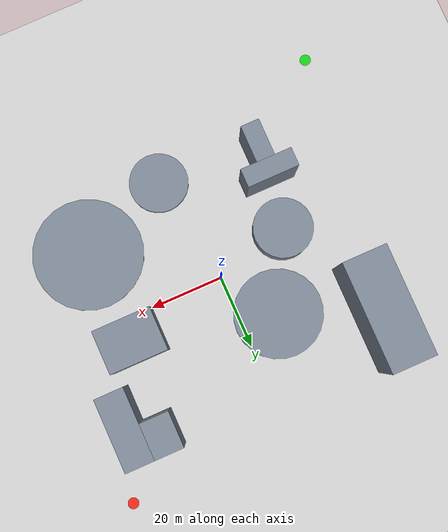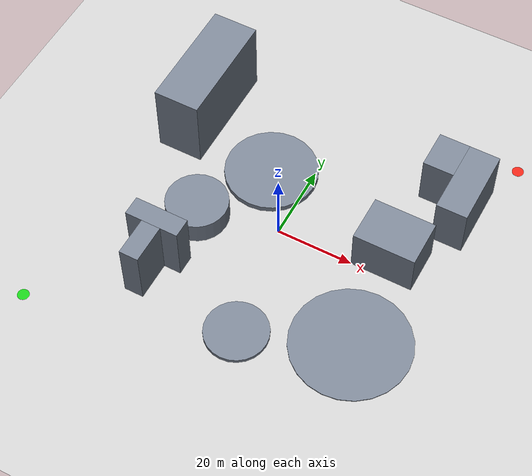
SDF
<?xml version="1.0"?>
<sdf version="1.6"><world name="logistics_4_urban_park_emergency">
  <physics name="default_physics" type="ode"><max_step_size>0.004</max_step_size><real_time_factor>1</real_time_factor><real_time_update_rate>250</real_time_update_rate><magnetic_field>6.0e-6 2.3e-5 -4.2e-5</magnetic_field></physics>
  <gravity>0 0 -9.8066</gravity>
  <include><uri>model://sun</uri></include>
  <include><uri>model://ground_plane</uri></include>
  <spherical_coordinates><surface_model>EARTH_WGS84</surface_model><latitude_deg>47.397742</latitude_deg><longitude_deg>8.545594</longitude_deg><elevation>488</elevation><heading_deg>0</heading_deg></spherical_coordinates>
<model name="obstacle_00_library_part_0"><static>true</static><pose>-22.000 -27.000 8.000 0 0 0</pose><link name="link"><collision name="collision"><geometry><box><size>5.000 10.000 16.000</size></box></geometry></collision><visual name="visual"><geometry><box><size>5.000 10.000 16.000</size></box></geometry><material><ambient>0.48 0.52 0.58 1</ambient><diffuse>0.48 0.52 0.58 1</diffuse></material></visual></link></model>
<model name="obstacle_00_library_part_1"><static>true</static><pose>-22.000 -19.500 8.000 0 0 0</pose><link name="link"><collision name="collision"><geometry><box><size>14.000 5.000 16.000</size></box></geometry></collision><visual name="visual"><geometry><box><size>14.000 5.000 16.000</size></box></geometry><material><ambient>0.48 0.52 0.58 1</ambient><diffuse>0.48 0.52 0.58 1</diffuse></material></visual></link></model>
<model name="obstacle_01_gallery_part_0"><static>true</static><pose>38.000 26.000 7.000 0 0 0</pose><link name="link"><collision name="collision"><geometry><box><size>8.000 20.000 14.000</size></box></geometry></collision><visual name="visual"><geometry><box><size>8.000 20.000 14.000</size></box></geometry><material><ambient>0.48 0.52 0.58 1</ambient><diffuse>0.48 0.52 0.58 1</diffuse></material></visual></link></model>
<model name="obstacle_01_gallery_part_1"><static>true</static><pose>30.000 31.000 7.000 0 0 0</pose><link name="link"><collision name="collision"><geometry><box><size>8.000 10.000 14.000</size></box></geometry></collision><visual name="visual"><geometry><box><size>8.000 10.000 14.000</size></box></geometry><material><ambient>0.48 0.52 0.58 1</ambient><diffuse>0.48 0.52 0.58 1</diffuse></material></visual></link></model>
<model name="obstacle_02_flower_bed"><static>true</static><pose>5.000 -30.000 0.500 0 0 0</pose><link name="link"><collision name="collision"><geometry><cylinder><radius>8.000</radius><length>1.000</length></cylinder></geometry></collision><visual name="visual"><geometry><cylinder><radius>8.000</radius><length>1.000</length></cylinder></geometry><material><ambient>0.48 0.52 0.58 1</ambient><diffuse>0.48 0.52 0.58 1</diffuse></material></visual></link></model>
<model name="obstacle_03_fountain"><static>true</static><pose>-10.000 15.000 0.750 0 0 0</pose><link name="link"><collision name="collision"><geometry><cylinder><radius>12.000</radius><length>1.500</length></cylinder></geometry></collision><visual name="visual"><geometry><cylinder><radius>12.000</radius><length>1.500</length></cylinder></geometry><material><ambient>0.48 0.52 0.58 1</ambient><diffuse>0.48 0.52 0.58 1</diffuse></material></visual></link></model>
<model name="obstacle_04_exhibition_hall"><static>true</static><pose>28.000 6.000 6.000 0 0 0</pose><link name="link"><collision name="collision"><geometry><box><size>16.000 12.000 12.000</size></box></geometry></collision><visual name="visual"><geometry><box><size>16.000 12.000 12.000</size></box></geometry><material><ambient>0.48 0.52 0.58 1</ambient><diffuse>0.48 0.52 0.58 1</diffuse></material></visual></link></model>
<model name="obstacle_05_sculpture"><static>true</static><pose>-20.000 -5.000 3.000 0 0 0</pose><link name="link"><collision name="collision"><geometry><cylinder><radius>8.000</radius><length>6.000</length></cylinder></geometry></collision><visual name="visual"><geometry><cylinder><radius>8.000</radius><length>6.000</length></cylinder></geometry><material><ambient>0.48 0.52 0.58 1</ambient><diffuse>0.48 0.52 0.58 1</diffuse></material></visual></link></model>
<model name="obstacle_06_office"><static>true</static><pose>-34.000 25.000 10.000 0 0 0</pose><link name="link"><collision name="collision"><geometry><box><size>12.000 30.000 20.000</size></box></geometry></collision><visual name="visual"><geometry><box><size>12.000 30.000 20.000</size></box></geometry><material><ambient>0.48 0.52 0.58 1</ambient><diffuse>0.48 0.52 0.58 1</diffuse></material></visual></link></model>
<model name="obstacle_07_lake"><static>true</static><pose>30.000 -20.000 0.150 0 0 0</pose><link name="link"><collision name="collision"><geometry><cylinder><radius>15.000</radius><length>0.300</length></cylinder></geometry></collision><visual name="visual"><geometry><cylinder><radius>15.000</radius><length>0.300</length></cylinder></geometry><material><ambient>0.48 0.52 0.58 1</ambient><diffuse>0.48 0.52 0.58 1</diffuse></material></visual></link></model>
<model name="start_zone"><static>true</static><pose>-45.000 -45.000 -0.009 0 0 0</pose><link name="link"><visual name="visual"><cast_shadows>false</cast_shadows><geometry><cylinder><radius>1.5</radius><length>0.02</length></cylinder></geometry><material><ambient>0.1 0.8 0.1 1</ambient><diffuse>0.1 0.8 0.1 1</diffuse></material></visual></link></model>
<model name="goal_zone"><static>true</static><pose>45.000 45.000 -0.009 0 0 0</pose><link name="link"><visual name="visual"><cast_shadows>false</cast_shadows><geometry><cylinder><radius>1.5</radius><length>0.02</length></cylinder></geometry><material><ambient>0.9 0.15 0.1 1</ambient><diffuse>0.9 0.15 0.1 1</diffuse></material></visual></link></model>
</world></sdf>
